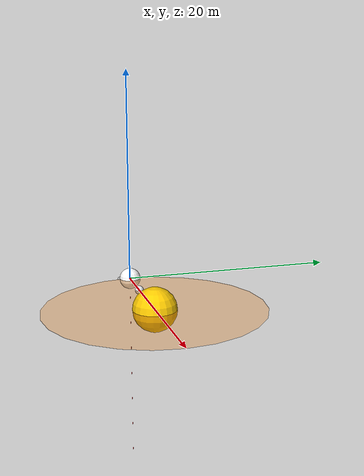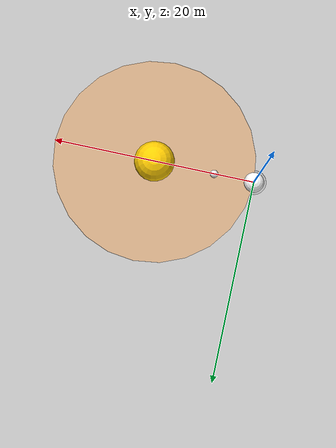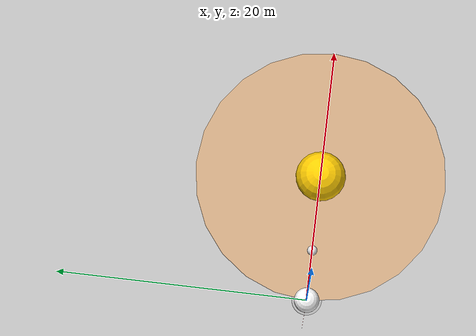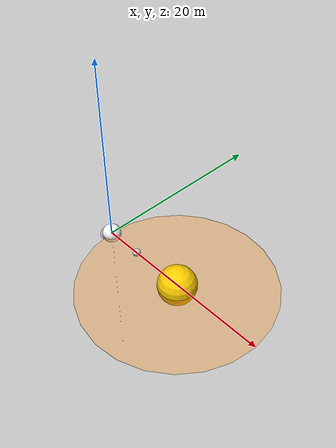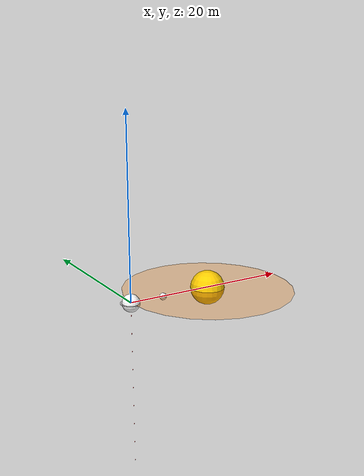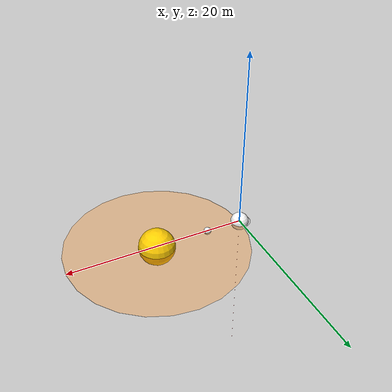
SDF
<?xml version="1.0" ?>
<sdf version="1.9">
  <world name="zero_g_wobble">
    <plugin filename="gz-sim-physics-system" name="gz::sim::systems::Physics" />
    <plugin filename="gz-sim-scene-broadcaster-system" name="gz::sim::systems::SceneBroadcaster" />
    <gravity>0 0 0</gravity>
    <scene>
       <ambient>0.4 0.4 0.4 1</ambient>
       <background>0.7 0.7 0.7 1</background>
       <shadows>false</shadows>
    </scene>
    <light type="directional" name="sun">
      <cast_shadows>false</cast_shadows>
      <pose>0 0 10 0 0 0</pose>
      <diffuse>0.8 0.8 0.8 1</diffuse>
      <specular>0.2 0.2 0.2 1</specular>
    </light>

    <model name="EarthMoonSun">

      <link name="earth">  <!-- ================ EARTH ============================ /-->
        <inertial>
          <mass>1.0</mass>
          <pose>0 0 0 0 0 0</pose>
          <inertia>
           <ixx>0.5</ixx>   <iyy>0.5</iyy>   <izz>0.2</izz>
          </inertia>
        </inertial>
        <velocity_decay>
          <linear>0</linear>
          <angular>0</angular>
        </velocity_decay>
        <visual name="earth_vis">
          <geometry>
           <sphere>
             <radius>1.0</radius>
           </sphere>
          </geometry>
          <material>
             <diffuse>1.0 1.0 1.0 1.0</diffuse>
             <specular>0.5 0.5 0.5 1.0</specular>
             <pbr>
               <metal>
                 <albedo_map>textures/8k_earth_daymap.jpg</albedo_map>
               </metal>
             </pbr>
          </material>
        </visual>
        <visual name="earth_disk">
           <geometry><cylinder><radius>1.2</radius><length>0.01</length></cylinder></geometry>
           <material>
             <ambient>0.5 0.5 0.5 0.2</ambient>
             <diffuse>0.5 0.5 0.5 0.2</diffuse>
           </material>
        </visual>
        <visual name="long_rod">
          <pose>0 0 0 0 0 0</pose>
          <geometry>
            <cylinder>
              <radius>0.002</radius>
              <length>40.0</length>
            </cylinder>
          </geometry>
          <material>
            <diffuse>1 0 0.0 1</diffuse>
            <ambient>0.8 0 0.0 1</ambient>
            <specular>0.5 0 0.0 1</specular>
          </material>
        </visual>
        <visual name="north_tip">
           <pose>0 0.0 -20.0 0 0 0</pose>
           <geometry>
              <sphere><radius>0.01</radius></sphere>
           </geometry>
           <material><ambient>1 1 1 1</ambient></material>
        </visual>
      </link>

    <link name="sun">  <!-- ================ SUN ============================ /-->
     <static>false</static> <self_collide>false</self_collide>
      <visual name="sun_vis">
        <pose>10 0 0 0 0 0</pose>
        <geometry><sphere><radius>2.0</radius></sphere></geometry>
        <material>
          <ambient>1 1 0 1</ambient>
          <diffuse>1 0.8 0 1</diffuse>
          <emissive>1 0.8 0 1</emissive>
        </material>
      </visual>
      <visual name="ecliptic">
        <pose>10 0 0 0 0 0</pose>
        <geometry><cylinder><radius>10.0</radius><length>0.02</length></cylinder></geometry>
        <material>
          <ambient>1 0.5 0 0.3</ambient>
          <diffuse>1 0.5 0 0.3</diffuse>
        </material>
      </visual>
    </link>

    <link name="moon">   <!-- ================ MOON ============================ /-->
      <static>false</static> <self_collide>false</self_collide>
      <visual name="moon_vis">
        <pose>4.0 0 0 0 0.0 0</pose>
        <geometry><sphere><radius>0.4</radius></sphere></geometry>
        <material>
          <ambient>0.8 0.8 0.8 1</ambient>
          <diffuse>0.9 0.9 0.9 1</diffuse>
        </material>      </visual>
    </link>

      <plugin filename="libTablePlugin.so" name="custom_sim::TableControlPlugin" />
    </model>
  </world>
</sdf>
